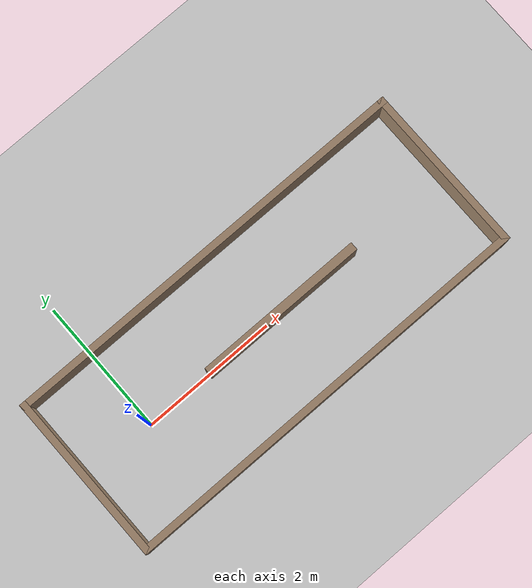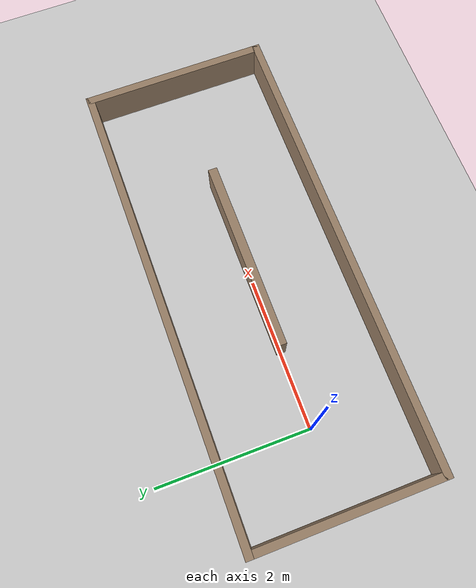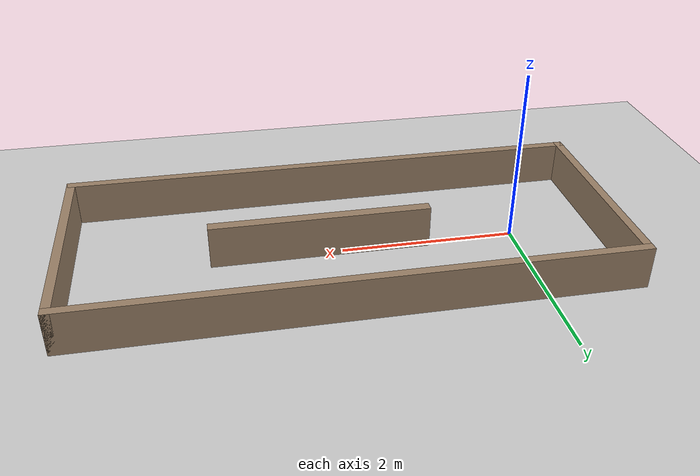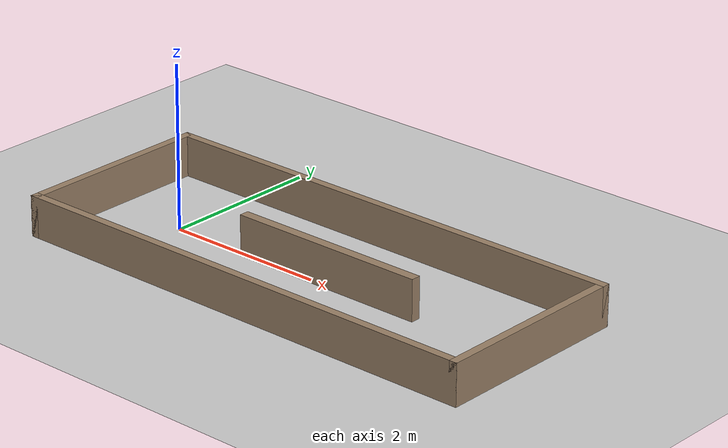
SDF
<?xml version="1.0" ?>
<!-- Two-route test room (generated): a wall in the middle, ~1 m routes on both sides. Robot starts at (0, 0). -->
<sdf version="1.5">
  <world name="default">
    <include><uri>model://sun</uri></include>
    <include><uri>model://ground_plane</uri></include>
    <model name="wall_0"><static>true</static><pose>2.000 1.200 0.250 0 0 0</pose>
      <link name="link">
        <collision name="c"><geometry><box><size>6.200 0.100 0.500</size></box></geometry></collision>
        <visual name="v"><geometry><box><size>6.200 0.100 0.500</size></box></geometry>
          <material><ambient>0.6 0.5 0.4 1</ambient><diffuse>0.6 0.5 0.4 1</diffuse></material></visual>
      </link></model>
    <model name="wall_1"><static>true</static><pose>2.000 -1.200 0.250 0 0 0</pose>
      <link name="link">
        <collision name="c"><geometry><box><size>6.200 0.100 0.500</size></box></geometry></collision>
        <visual name="v"><geometry><box><size>6.200 0.100 0.500</size></box></geometry>
          <material><ambient>0.6 0.5 0.4 1</ambient><diffuse>0.6 0.5 0.4 1</diffuse></material></visual>
      </link></model>
    <model name="wall_2"><static>true</static><pose>-1.050 0.000 0.250 0 0 0</pose>
      <link name="link">
        <collision name="c"><geometry><box><size>0.100 2.500 0.500</size></box></geometry></collision>
        <visual name="v"><geometry><box><size>0.100 2.500 0.500</size></box></geometry>
          <material><ambient>0.6 0.5 0.4 1</ambient><diffuse>0.6 0.5 0.4 1</diffuse></material></visual>
      </link></model>
    <model name="wall_3"><static>true</static><pose>5.050 0.000 0.250 0 0 0</pose>
      <link name="link">
        <collision name="c"><geometry><box><size>0.100 2.500 0.500</size></box></geometry></collision>
        <visual name="v"><geometry><box><size>0.100 2.500 0.500</size></box></geometry>
          <material><ambient>0.6 0.5 0.4 1</ambient><diffuse>0.6 0.5 0.4 1</diffuse></material></visual>
      </link></model>
    <model name="wall_4"><static>true</static><pose>2.250 0.000 0.250 0 0 0</pose>
      <link name="link">
        <collision name="c"><geometry><box><size>2.500 0.120 0.500</size></box></geometry></collision>
        <visual name="v"><geometry><box><size>2.500 0.120 0.500</size></box></geometry>
          <material><ambient>0.6 0.5 0.4 1</ambient><diffuse>0.6 0.5 0.4 1</diffuse></material></visual>
      </link></model>
  </world>
</sdf>
